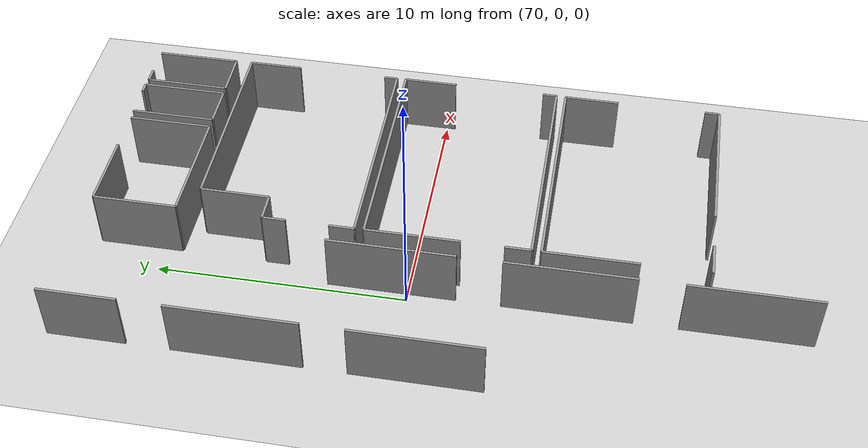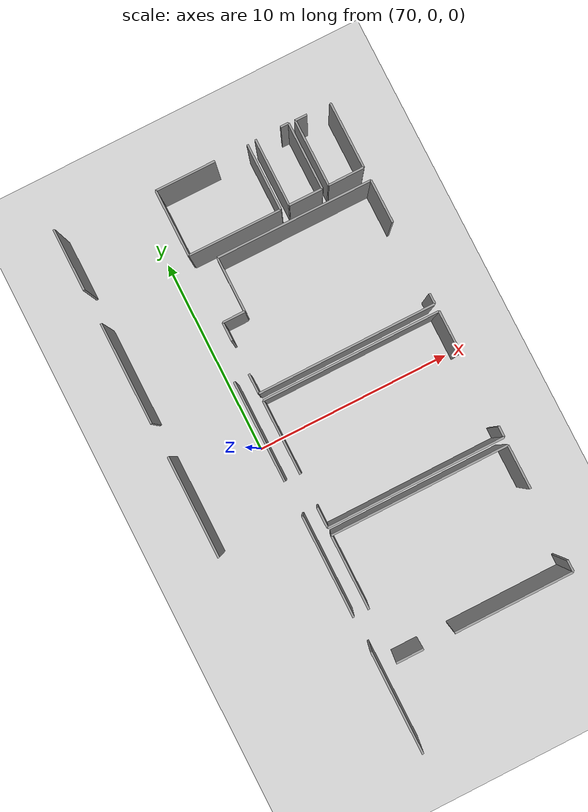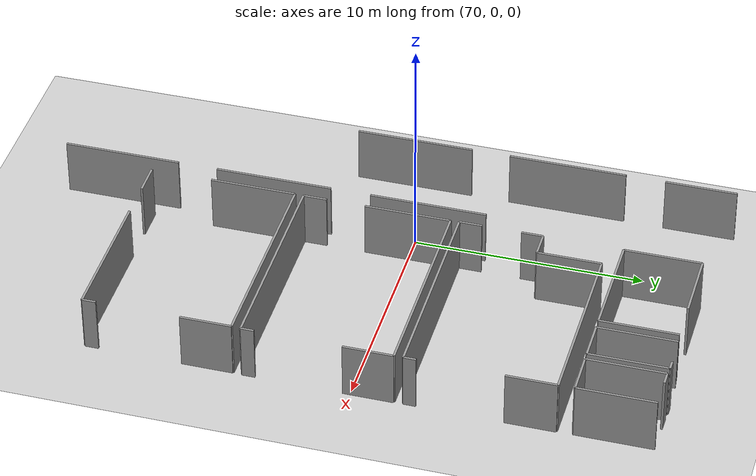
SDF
<sdf version="1.6">
 <world name="default">
  <model name="ground_plane">
   <static>1</static>
   <link name="link">
    <collision name="collision">
     <geometry><plane><normal>0 0 1</normal><size>100 100</size></plane></geometry>
     <surface><friction><ode><mu>100</mu><mu2>50</mu2></ode></friction></surface>
    </collision>
    <visual name="visual">
     <cast_shadows>0</cast_shadows>
     <geometry><plane><normal>0 0 1</normal><size>100 100</size></plane></geometry>
     <material>
      <script><uri>file://media/materials/scripts/gazebo.material</uri><name>Gazebo/Grey</name></script>
     </material>
    </visual>
   </link>
  </model>
  <model name="0510035737_A_40_1_105">
   <static>1</static>
   <link name="Wall_444">
    <collision name="Wall_444_Collision">
     <geometry><box><size>5.12573480347 0.1 2.5</size></box></geometry>
     <pose>2.56286740173 0 1.25 0 0 0</pose>
    </collision>
    <visual name="Wall_444_Visual">
     <pose>2.56286740173 0 1.25 0 0 0</pose>
     <geometry><box><size>5.12573480347 0.1 2.5</size></box></geometry>
     <material>
      <script><uri>file://media/materials/scripts/gazebo.material</uri><name>Gazebo/Grey</name></script>
      <ambient>1 1 1 1</ambient>
     </material>
    </visual>
    <pose>146.378062343 -49.4776778622 0 0 0 1.57079632679</pose>
   </link>
   <link name="Wall_445">
    <collision name="Wall_445_Collision">
     <geometry><box><size>5.13717390614 0.1 2.5</size></box></geometry>
     <pose>2.56858695307 0 1.25 0 0 0</pose>
    </collision>
    <visual name="Wall_445_Visual">
     <pose>2.56858695307 0 1.25 0 0 0</pose>
     <geometry><box><size>5.13717390614 0.1 2.5</size></box></geometry>
     <material>
      <script><uri>file://media/materials/scripts/gazebo.material</uri><name>Gazebo/Grey</name></script>
      <ambient>1 1 1 1</ambient>
     </material>
    </visual>
    <pose>146.378062343 -42.6754790124 0 0 0 1.57079632679</pose>
   </link>
   <link name="Wall_446">
    <collision name="Wall_446_Collision">
     <geometry><box><size>3.12490864606 0.1 2.5</size></box></geometry>
     <pose>1.56245432303 0 1.25 0 0 0</pose>
    </collision>
    <visual name="Wall_446_Visual">
     <pose>1.56245432303 0 1.25 0 0 0</pose>
     <geometry><box><size>3.12490864606 0.1 2.5</size></box></geometry>
     <material>
      <script><uri>file://media/materials/scripts/gazebo.material</uri><name>Gazebo/Grey</name></script>
      <ambient>1 1 1 1</ambient>
     </material>
    </visual>
    <pose>146.378062343 -35.8160846494 0 0 0 1.57079632679</pose>
   </link>
   <link name="Wall_449">
    <collision name="Wall_449_Collision">
     <geometry><box><size>5.08785866353 0.1 2.5</size></box></geometry>
     <pose>2.54392933177 0 1.25 0 0 0</pose>
    </collision>
    <visual name="Wall_449_Visual">
     <pose>2.54392933177 0 1.25 0 0 0</pose>
     <geometry><box><size>5.08785866353 0.1 2.5</size></box></geometry>
     <material>
      <script><uri>file://media/materials/scripts/gazebo.material</uri><name>Gazebo/Grey</name></script>
      <ambient>1 1 1 1</ambient>
     </material>
    </visual>
    <pose>150.591210956 -42.6762416193 0 0 0 -1.57079632679</pose>
   </link>
   <link name="Wall_450">
    <collision name="Wall_450_Collision">
     <geometry><box><size>5.11277048712 0.1 2.5</size></box></geometry>
     <pose>2.55638524356 0 1.25 0 0 0</pose>
    </collision>
    <visual name="Wall_450_Visual">
     <pose>2.55638524356 0 1.25 0 0 0</pose>
     <geometry><box><size>5.11277048712 0.1 2.5</size></box></geometry>
     <material>
      <script><uri>file://media/materials/scripts/gazebo.material</uri><name>Gazebo/Grey</name></script>
      <ambient>1 1 1 1</ambient>
     </material>
    </visual>
    <pose>150.591210956 -49.5132661816 0 0 0 -1.57079632679</pose>
   </link>
   <link name="Wall_451">
    <collision name="Wall_451_Collision">
     <geometry><box><size>5.11277048712 0.1 2.5</size></box></geometry>
     <pose>2.55638524356 0 1.25 0 0 0</pose>
    </collision>
    <visual name="Wall_451_Visual">
     <pose>2.55638524356 0 1.25 0 0 0</pose>
     <geometry><box><size>5.11277048712 0.1 2.5</size></box></geometry>
     <material>
      <script><uri>file://media/materials/scripts/gazebo.material</uri><name>Gazebo/Grey</name></script>
      <ambient>1 1 1 1</ambient>
     </material>
    </visual>
    <pose>150.591210956 -56.3561373963 0 0 0 -1.57079632679</pose>
   </link>
   <link name="Wall_558">
    <collision name="Wall_558_Collision">
     <geometry><box><size>3.73524832385 0.1 2.5</size></box></geometry>
     <pose>1.86762416193 0 1.25 0 0 0</pose>
    </collision>
    <visual name="Wall_558_Visual">
     <pose>1.86762416193 0 1.25 0 0 0</pose>
     <geometry><box><size>3.73524832385 0.1 2.5</size></box></geometry>
     <material>
      <script><uri>file://media/materials/scripts/gazebo.material</uri><name>Gazebo/Grey</name></script>
      <ambient>1 1 1 1</ambient>
     </material>
    </visual>
    <pose>151.366527915 -54.6232404436 0 0 0 1.57079632679</pose>
   </link>
   <link name="Wall_559">
    <collision name="Wall_559_Collision">
     <geometry><box><size>8.999777573 0.1 2.5</size></box></geometry>
     <pose>4.4998887865 0 1.25 0 0 0</pose>
    </collision>
    <visual name="Wall_559_Visual">
     <pose>4.4998887865 0 1.25 0 0 0</pose>
     <geometry><box><size>8.999777573 0.1 2.5</size></box></geometry>
     <material>
      <script><uri>file://media/materials/scripts/gazebo.material</uri><name>Gazebo/Grey</name></script>
      <ambient>1 1 1 1</ambient>
     </material>
    </visual>
    <pose>151.366527915 -50.8879921197 0 0 0 0.0</pose>
   </link>
   <link name="Wall_560">
    <collision name="Wall_560_Collision">
     <geometry><box><size>2.22376155826 0.1 2.5</size></box></geometry>
     <pose>1.11188077913 0 1.25 0 0 0</pose>
    </collision>
    <visual name="Wall_560_Visual">
     <pose>1.11188077913 0 1.25 0 0 0</pose>
     <geometry><box><size>2.22376155826 0.1 2.5</size></box></geometry>
     <material>
      <script><uri>file://media/materials/scripts/gazebo.material</uri><name>Gazebo/Grey</name></script>
      <ambient>1 1 1 1</ambient>
     </material>
    </visual>
    <pose>160.366305488 -50.8879921197 0 0 0 -1.57079632679</pose>
   </link>
   <link name="Wall_561">
    <collision name="Wall_561_Collision">
     <geometry><box><size>0.595850147755 0.1 2.5</size></box></geometry>
     <pose>0.297925073878 0 1.25 0 0 0</pose>
    </collision>
    <visual name="Wall_561_Visual">
     <pose>0.297925073878 0 1.25 0 0 0</pose>
     <geometry><box><size>0.595850147755 0.1 2.5</size></box></geometry>
     <material>
      <script><uri>file://media/materials/scripts/gazebo.material</uri><name>Gazebo/Grey</name></script>
      <ambient>1 1 1 1</ambient>
     </material>
    </visual>
    <pose>160.366305488 -56.7160878269 0 0 0 -1.57079632679</pose>
   </link>
   <link name="Wall_562">
    <collision name="Wall_562_Collision">
     <geometry><box><size>6.03171173461 0.1 2.5</size></box></geometry>
     <pose>3.01585586731 0 1.25 0 0 0</pose>
    </collision>
    <visual name="Wall_562_Visual">
     <pose>3.01585586731 0 1.25 0 0 0</pose>
     <geometry><box><size>6.03171173461 0.1 2.5</size></box></geometry>
     <material>
      <script><uri>file://media/materials/scripts/gazebo.material</uri><name>Gazebo/Grey</name></script>
      <ambient>1 1 1 1</ambient>
     </material>
    </visual>
    <pose>160.366305488 -57.3119379746 0 0 0 3.14159265359</pose>
   </link>
   <link name="Wall_563">
    <collision name="Wall_563_Collision">
     <geometry><box><size>1.39176587155 0.1 2.5</size></box></geometry>
     <pose>0.695882935774 0 1.25 0 0 0</pose>
    </collision>
    <visual name="Wall_563_Visual">
     <pose>0.695882935774 0 1.25 0 0 0</pose>
     <geometry><box><size>1.39176587155 0.1 2.5</size></box></geometry>
     <material>
      <script><uri>file://media/materials/scripts/gazebo.material</uri><name>Gazebo/Grey</name></script>
      <ambient>1 1 1 1</ambient>
     </material>
    </visual>
    <pose>152.758285406 -57.3119379746 0 0 0 -3.13812234789</pose>
   </link>
   <link name="Wall_564">
    <collision name="Wall_564_Collision">
     <geometry><box><size>1.03307807188 0.1 2.5</size></box></geometry>
     <pose>0.516539035938 0 1.25 0 0 0</pose>
    </collision>
    <visual name="Wall_564_Visual">
     <pose>0.516539035938 0 1.25 0 0 0</pose>
     <geometry><box><size>1.03307807188 0.1 2.5</size></box></geometry>
     <material>
      <script><uri>file://media/materials/scripts/gazebo.material</uri><name>Gazebo/Grey</name></script>
      <ambient>1 1 1 1</ambient>
     </material>
    </visual>
    <pose>151.373645578 -50.510755934 0 0 0 1.57079632679</pose>
   </link>
   <link name="Wall_565">
    <collision name="Wall_565_Collision">
     <geometry><box><size>3.760668552 0.1 2.5</size></box></geometry>
     <pose>1.880334276 0 1.25 0 0 0</pose>
    </collision>
    <visual name="Wall_565_Visual">
     <pose>1.880334276 0 1.25 0 0 0</pose>
     <geometry><box><size>3.760668552 0.1 2.5</size></box></geometry>
     <material>
      <script><uri>file://media/materials/scripts/gazebo.material</uri><name>Gazebo/Grey</name></script>
      <ambient>1 1 1 1</ambient>
     </material>
    </visual>
    <pose>151.373645578 -47.7951129611 0 0 0 1.57079632679</pose>
   </link>
   <link name="Wall_566">
    <collision name="Wall_566_Collision">
     <geometry><box><size>9.01019986654 0.1 2.5</size></box></geometry>
     <pose>4.50509993327 0 1.25 0 0 0</pose>
    </collision>
    <visual name="Wall_566_Visual">
     <pose>4.50509993327 0 1.25 0 0 0</pose>
     <geometry><box><size>9.01019986654 0.1 2.5</size></box></geometry>
     <material>
      <script><uri>file://media/materials/scripts/gazebo.material</uri><name>Gazebo/Grey</name></script>
      <ambient>1 1 1 1</ambient>
     </material>
    </visual>
    <pose>151.373645578 -44.0344444091 0 0 0 0.0</pose>
   </link>
   <link name="Wall_567">
    <collision name="Wall_567_Collision">
     <geometry><box><size>2.17266689969 0.1 2.5</size></box></geometry>
     <pose>1.08633344984 0 1.25 0 0 0</pose>
    </collision>
    <visual name="Wall_567_Visual">
     <pose>1.08633344984 0 1.25 0 0 0</pose>
     <geometry><box><size>2.17266689969 0.1 2.5</size></box></geometry>
     <material>
      <script><uri>file://media/materials/scripts/gazebo.material</uri><name>Gazebo/Grey</name></script>
      <ambient>1 1 1 1</ambient>
     </material>
    </visual>
    <pose>160.383845445 -44.0344444091 0 0 0 -1.57079632679</pose>
   </link>
   <link name="Wall_568">
    <collision name="Wall_568_Collision">
     <geometry><box><size>0.566871087668 0.1 2.5</size></box></geometry>
     <pose>0.283435543834 0 1.25 0 0 0</pose>
    </collision>
    <visual name="Wall_568_Visual">
     <pose>0.283435543834 0 1.25 0 0 0</pose>
     <geometry><box><size>0.566871087668 0.1 2.5</size></box></geometry>
     <material>
      <script><uri>file://media/materials/scripts/gazebo.material</uri><name>Gazebo/Grey</name></script>
      <ambient>1 1 1 1</ambient>
     </material>
    </visual>
    <pose>160.383845445 -49.9286327095 0 0 0 -1.57079632679</pose>
   </link>
   <link name="Wall_569">
    <collision name="Wall_569_Collision">
     <geometry><box><size>9.01021277566 0.1 2.5</size></box></geometry>
     <pose>4.50510638783 0 1.25 0 0 0</pose>
    </collision>
    <visual name="Wall_569_Visual">
     <pose>4.50510638783 0 1.25 0 0 0</pose>
     <geometry><box><size>9.01021277566 0.1 2.5</size></box></geometry>
     <material>
      <script><uri>file://media/materials/scripts/gazebo.material</uri><name>Gazebo/Grey</name></script>
      <ambient>1 1 1 1</ambient>
     </material>
    </visual>
    <pose>160.383845445 -50.4955037971 0 0 0 -3.13989989177</pose>
   </link>
   <link name="Wall_570">
    <collision name="Wall_570_Collision">
     <geometry><box><size>1.00003177529 0.1 2.5</size></box></geometry>
     <pose>0.500015887643 0 1.25 0 0 0</pose>
    </collision>
    <visual name="Wall_570_Visual">
     <pose>0.500015887643 0 1.25 0 0 0</pose>
     <geometry><box><size>1.00003177529 0.1 2.5</size></box></geometry>
     <material>
      <script><uri>file://media/materials/scripts/gazebo.material</uri><name>Gazebo/Grey</name></script>
      <ambient>1 1 1 1</ambient>
     </material>
    </visual>
    <pose>151.351784182 -43.664071685 0 0 0 1.57079632679</pose>
   </link>
   <link name="Wall_571">
    <collision name="Wall_571_Collision">
     <geometry><box><size>0.935464395793 0.1 2.5</size></box></geometry>
     <pose>0.467732197896 0 1.25 0 0 0</pose>
    </collision>
    <visual name="Wall_571_Visual">
     <pose>0.467732197896 0 1.25 0 0 0</pose>
     <geometry><box><size>0.935464395793 0.1 2.5</size></box></geometry>
     <material>
      <script><uri>file://media/materials/scripts/gazebo.material</uri><name>Gazebo/Grey</name></script>
      <ambient>1 1 1 1</ambient>
     </material>
    </visual>
    <pose>151.351784182 -40.9568173874 0 0 0 1.57079632679</pose>
   </link>
   <link name="Wall_572">
    <collision name="Wall_572_Collision">
     <geometry><box><size>1.12255727495 0.1 2.5</size></box></geometry>
     <pose>0.561278637476 0 1.25 0 0 0</pose>
    </collision>
    <visual name="Wall_572_Visual">
     <pose>0.561278637476 0 1.25 0 0 0</pose>
     <geometry><box><size>1.12255727495 0.1 2.5</size></box></geometry>
     <material>
      <script><uri>file://media/materials/scripts/gazebo.material</uri><name>Gazebo/Grey</name></script>
      <ambient>1 1 1 1</ambient>
     </material>
    </visual>
    <pose>151.351784182 -40.0213529916 0 0 0 0.0</pose>
   </link>
   <link name="Wall_573">
    <collision name="Wall_573_Collision">
     <geometry><box><size>2.7677544406 0.1 2.5</size></box></geometry>
     <pose>1.3838772203 0 1.25 0 0 0</pose>
    </collision>
    <visual name="Wall_573_Visual">
     <pose>1.3838772203 0 1.25 0 0 0</pose>
     <geometry><box><size>2.7677544406 0.1 2.5</size></box></geometry>
     <material>
      <script><uri>file://media/materials/scripts/gazebo.material</uri><name>Gazebo/Grey</name></script>
      <ambient>1 1 1 1</ambient>
     </material>
    </visual>
    <pose>152.474341457 -40.0213529916 0 0 0 1.57079632679</pose>
   </link>
   <link name="Wall_574">
    <collision name="Wall_574_Collision">
     <geometry><box><size>7.89196403038 0.1 2.5</size></box></geometry>
     <pose>3.94598201519 0 1.25 0 0 0</pose>
    </collision>
    <visual name="Wall_574_Visual">
     <pose>3.94598201519 0 1.25 0 0 0</pose>
     <geometry><box><size>7.89196403038 0.1 2.5</size></box></geometry>
     <material>
      <script><uri>file://media/materials/scripts/gazebo.material</uri><name>Gazebo/Grey</name></script>
      <ambient>1 1 1 1</ambient>
     </material>
    </visual>
    <pose>152.474341457 -37.253598551 0 0 0 0.0</pose>
   </link>
   <link name="Wall_575">
    <collision name="Wall_575_Collision">
     <geometry><box><size>2.18156397954 0.1 2.5</size></box></geometry>
     <pose>1.09078198977 0 1.25 0 0 0</pose>
    </collision>
    <visual name="Wall_575_Visual">
     <pose>1.09078198977 0 1.25 0 0 0</pose>
     <geometry><box><size>2.18156397954 0.1 2.5</size></box></geometry>
     <material>
      <script><uri>file://media/materials/scripts/gazebo.material</uri><name>Gazebo/Grey</name></script>
      <ambient>1 1 1 1</ambient>
     </material>
    </visual>
    <pose>160.366305488 -37.253598551 0 0 0 -1.57079632679</pose>
   </link>
   <link name="Wall_576">
    <collision name="Wall_576_Collision">
     <geometry><box><size>0.537637825299 0.1 2.5</size></box></geometry>
     <pose>0.26881891265 0 1.25 0 0 0</pose>
    </collision>
    <visual name="Wall_576_Visual">
     <pose>0.26881891265 0 1.25 0 0 0</pose>
     <geometry><box><size>0.537637825299 0.1 2.5</size></box></geometry>
     <material>
      <script><uri>file://media/materials/scripts/gazebo.material</uri><name>Gazebo/Grey</name></script>
      <ambient>1 1 1 1</ambient>
     </material>
    </visual>
    <pose>160.366305488 -43.112198532 0 0 0 -1.57079632679</pose>
   </link>
   <link name="Wall_577">
    <collision name="Wall_577_Collision">
     <geometry><box><size>9.01453254522 0.1 2.5</size></box></geometry>
     <pose>4.50726627261 0 1.25 0 0 0</pose>
    </collision>
    <visual name="Wall_577_Visual">
     <pose>4.50726627261 0 1.25 0 0 0</pose>
     <geometry><box><size>9.01453254522 0.1 2.5</size></box></geometry>
     <material>
      <script><uri>file://media/materials/scripts/gazebo.material</uri><name>Gazebo/Grey</name></script>
      <ambient>1 1 1 1</ambient>
     </material>
    </visual>
    <pose>160.366305488 -43.6498363573 0 0 0 -3.14001349975</pose>
   </link>
   <link name="Wall_589">
    <collision name="Wall_589_Collision">
     <geometry><box><size>3.3519112834 0.1 2.5</size></box></geometry>
     <pose>1.6759556417 0 1.25 0 0 0</pose>
    </collision>
    <visual name="Wall_589_Visual">
     <pose>1.6759556417 0 1.25 0 0 0</pose>
     <geometry><box><size>3.3519112834 0.1 2.5</size></box></geometry>
     <material>
      <script><uri>file://media/materials/scripts/gazebo.material</uri><name>Gazebo/Grey</name></script>
      <ambient>1 1 1 1</ambient>
     </material>
    </visual>
    <pose>151.351784182 -36.5647103683 0 0 0 1.57079632679</pose>
   </link>
   <link name="Wall_590">
    <collision name="Wall_590_Collision">
     <geometry><box><size>3.03314162245 0.1 2.5</size></box></geometry>
     <pose>1.51657081122 0 1.25 0 0 0</pose>
    </collision>
    <visual name="Wall_590_Visual">
     <pose>1.51657081122 0 1.25 0 0 0</pose>
     <geometry><box><size>3.03314162245 0.1 2.5</size></box></geometry>
     <material>
      <script><uri>file://media/materials/scripts/gazebo.material</uri><name>Gazebo/Grey</name></script>
      <ambient>1 1 1 1</ambient>
     </material>
    </visual>
    <pose>151.351784182 -33.2127990849 0 0 0 0.0</pose>
   </link>
   <link name="Wall_591">
    <collision name="Wall_591_Collision">
     <geometry><box><size>3.37097645451 0.1 2.5</size></box></geometry>
     <pose>1.68548822726 0 1.25 0 0 0</pose>
    </collision>
    <visual name="Wall_591_Visual">
     <pose>1.68548822726 0 1.25 0 0 0</pose>
     <geometry><box><size>3.37097645451 0.1 2.5</size></box></geometry>
     <material>
      <script><uri>file://media/materials/scripts/gazebo.material</uri><name>Gazebo/Grey</name></script>
      <ambient>1 1 1 1</ambient>
     </material>
    </visual>
    <pose>156.063677672 -33.2127990849 0 0 0 -1.57079632679</pose>
   </link>
   <link name="Wall_592">
    <collision name="Wall_592_Collision">
     <geometry><box><size>4.71193205965 0.1 2.5</size></box></geometry>
     <pose>2.35596602982 0 1.25 0 0 0</pose>
    </collision>
    <visual name="Wall_592_Visual">
     <pose>2.35596602982 0 1.25 0 0 0</pose>
     <geometry><box><size>4.71193205965 0.1 2.5</size></box></geometry>
     <material>
      <script><uri>file://media/materials/scripts/gazebo.material</uri><name>Gazebo/Grey</name></script>
      <ambient>1 1 1 1</ambient>
     </material>
    </visual>
    <pose>156.063677672 -36.5837755394 0 0 0 3.13754649526</pose>
   </link>
   <link name="Wall_593">
    <collision name="Wall_593_Collision">
     <geometry><box><size>3.41393664008 0.1 2.5</size></box></geometry>
     <pose>1.70696832004 0 1.25 0 0 0</pose>
    </collision>
    <visual name="Wall_593_Visual">
     <pose>1.70696832004 0 1.25 0 0 0</pose>
     <geometry><box><size>3.41393664008 0.1 2.5</size></box></geometry>
     <material>
      <script><uri>file://media/materials/scripts/gazebo.material</uri><name>Gazebo/Grey</name></script>
      <ambient>1 1 1 1</ambient>
     </material>
    </visual>
    <pose>156.496838359 -36.5799625052 0 0 0 1.57079632679</pose>
   </link>
   <link name="Wall_594">
    <collision name="Wall_594_Collision">
     <geometry><box><size>0.417145943885 0.1 2.5</size></box></geometry>
     <pose>0.208572971942 0 1.25 0 0 0</pose>
    </collision>
    <visual name="Wall_594_Visual">
     <pose>0.208572971942 0 1.25 0 0 0</pose>
     <geometry><box><size>0.417145943885 0.1 2.5</size></box></geometry>
     <material>
      <script><uri>file://media/materials/scripts/gazebo.material</uri><name>Gazebo/Grey</name></script>
      <ambient>1 1 1 1</ambient>
     </material>
    </visual>
    <pose>157.782339296 -33.1660258651 0 0 0 0.0</pose>
   </link>
   <link name="Wall_595">
    <collision name="Wall_595_Collision">
     <geometry><box><size>3.4177496743 0.1 2.5</size></box></geometry>
     <pose>1.70887483715 0 1.25 0 0 0</pose>
    </collision>
    <visual name="Wall_595_Visual">
     <pose>1.70887483715 0 1.25 0 0 0</pose>
     <geometry><box><size>3.4177496743 0.1 2.5</size></box></geometry>
     <material>
      <script><uri>file://media/materials/scripts/gazebo.material</uri><name>Gazebo/Grey</name></script>
      <ambient>1 1 1 1</ambient>
     </material>
    </visual>
    <pose>158.19948524 -33.1660258651 0 0 0 -1.57079632679</pose>
   </link>
   <link name="Wall_596">
    <collision name="Wall_596_Collision">
     <geometry><box><size>1.70265115085 0.1 2.5</size></box></geometry>
     <pose>0.851325575423 0 1.25 0 0 0</pose>
    </collision>
    <visual name="Wall_596_Visual">
     <pose>0.851325575423 0 1.25 0 0 0</pose>
     <geometry><box><size>1.70265115085 0.1 2.5</size></box></geometry>
     <material>
      <script><uri>file://media/materials/scripts/gazebo.material</uri><name>Gazebo/Grey</name></script>
      <ambient>1 1 1 1</ambient>
     </material>
    </visual>
    <pose>158.19948524 -36.5837755394 0 0 0 3.13935318286</pose>
   </link>
   <link name="Wall_597">
    <collision name="Wall_597_Collision">
     <geometry><box><size>3.37453528645 0.1 2.5</size></box></geometry>
     <pose>1.68726764323 0 1.25 0 0 0</pose>
    </collision>
    <visual name="Wall_597_Visual">
     <pose>1.68726764323 0 1.25 0 0 0</pose>
     <geometry><box><size>3.37453528645 0.1 2.5</size></box></geometry>
     <material>
      <script><uri>file://media/materials/scripts/gazebo.material</uri><name>Gazebo/Grey</name></script>
      <ambient>1 1 1 1</ambient>
     </material>
    </visual>
    <pose>158.527406183 -36.5799625052 0 0 0 1.57079632679</pose>
   </link>
   <link name="Wall_598">
    <collision name="Wall_598_Collision">
     <geometry><box><size>0.599917384259 0.1 2.5</size></box></geometry>
     <pose>0.299958692129 0 1.25 0 0 0</pose>
    </collision>
    <visual name="Wall_598_Visual">
     <pose>0.299958692129 0 1.25 0 0 0</pose>
     <geometry><box><size>0.599917384259 0.1 2.5</size></box></geometry>
     <material>
      <script><uri>file://media/materials/scripts/gazebo.material</uri><name>Gazebo/Grey</name></script>
      <ambient>1 1 1 1</ambient>
     </material>
    </visual>
    <pose>158.527406183 -33.2054272187 0 0 0 0.0</pose>
   </link>
   <link name="Wall_599">
    <collision name="Wall_599_Collision">
     <geometry><box><size>3.3643671952 0.1 2.5</size></box></geometry>
     <pose>1.6821835976 0 1.25 0 0 0</pose>
    </collision>
    <visual name="Wall_599_Visual">
     <pose>1.6821835976 0 1.25 0 0 0</pose>
     <geometry><box><size>3.3643671952 0.1 2.5</size></box></geometry>
     <material>
      <script><uri>file://media/materials/scripts/gazebo.material</uri><name>Gazebo/Grey</name></script>
      <ambient>1 1 1 1</ambient>
     </material>
    </visual>
    <pose>160.33986845 -33.2054272187 0 0 0 -1.57079632679</pose>
   </link>
   <link name="Wall_600">
    <collision name="Wall_600_Collision">
     <geometry><box><size>1.81249078862 0.1 2.5</size></box></geometry>
     <pose>0.90624539431 0 1.25 0 0 0</pose>
    </collision>
    <visual name="Wall_600_Visual">
     <pose>0.90624539431 0 1.25 0 0 0</pose>
     <geometry><box><size>1.81249078862 0.1 2.5</size></box></geometry>
     <material>
      <script><uri>file://media/materials/scripts/gazebo.material</uri><name>Gazebo/Grey</name></script>
      <ambient>1 1 1 1</ambient>
     </material>
    </visual>
    <pose>160.33986845 -36.5697944139 0 0 0 -3.13598261427</pose>
   </link>
   <pose>-80.2 45.8857980363 0 0 0 0</pose>
  </model>
 </world>
</sdf>
